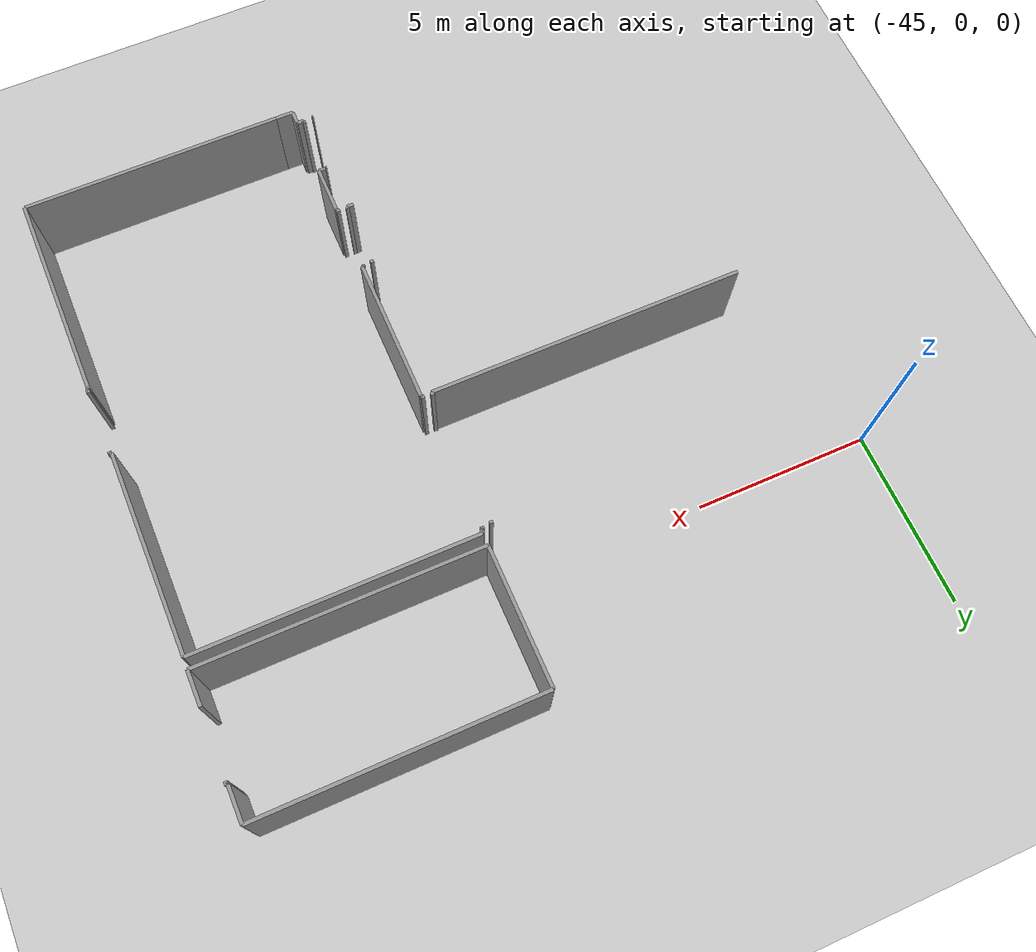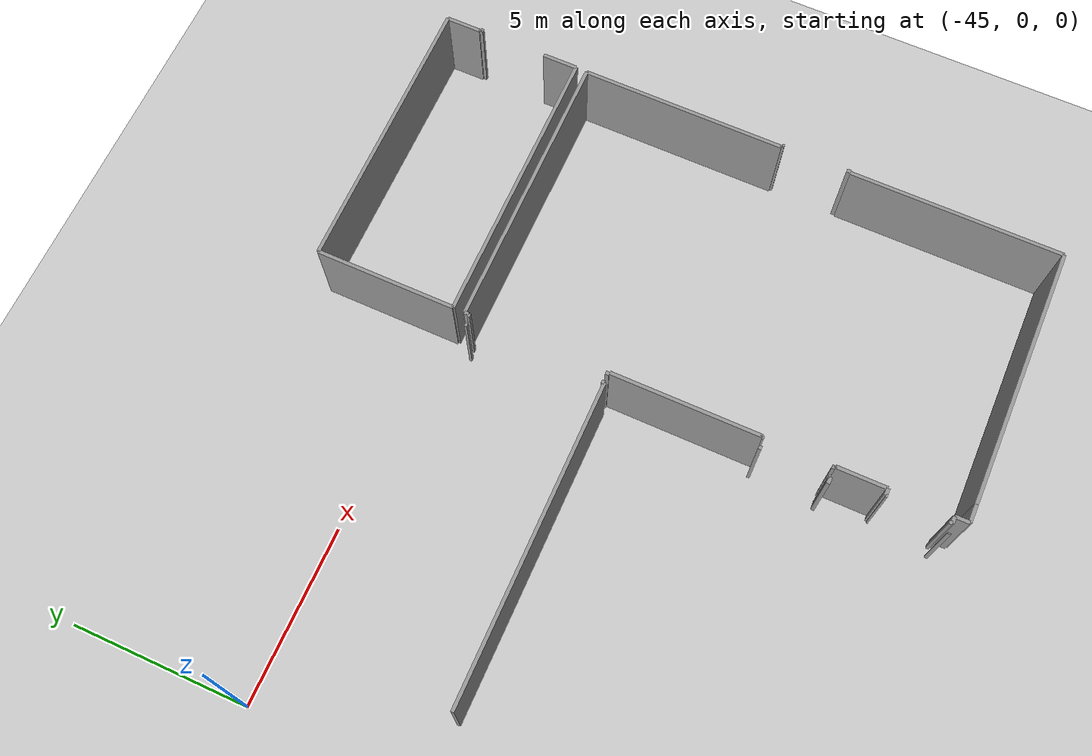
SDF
<sdf version="1.6">
 <world name="default">
  <model name="ground_plane">
   <static>1</static>
   <link name="link">
    <collision name="collision">
     <geometry><plane><normal>0 0 1</normal><size>100 100</size></plane></geometry>
     <surface><friction><ode><mu>100</mu><mu2>50</mu2></ode></friction></surface>
    </collision>
    <visual name="visual">
     <cast_shadows>0</cast_shadows>
     <geometry><plane><normal>0 0 1</normal><size>100 100</size></plane></geometry>
     <material>
      <script><uri>file://media/materials/scripts/gazebo.material</uri><name>Gazebo/Grey</name></script>
     </material>
    </visual>
   </link>
  </model>
  <model name="0510030939_A_40_1_103">
   <static>1</static>
   <link name="Wall_48">
    <collision name="Wall_48_Collision">
     <geometry><box><size>0.0758649172412 0.1 2.5</size></box></geometry>
     <pose>0.0379324586206 0 1.25 0 0 0</pose>
    </collision>
    <visual name="Wall_48_Visual">
     <pose>0.0379324586206 0 1.25 0 0 0</pose>
     <geometry><box><size>0.0758649172412 0.1 2.5</size></box></geometry>
     <material>
      <script><uri>file://media/materials/scripts/gazebo.material</uri><name>Gazebo/Grey</name></script>
      <ambient>1 1 1 1</ambient>
     </material>
    </visual>
    <pose>23.3506750961 -18.7676080948 0 0 0 -1.57079632679</pose>
   </link>
   <link name="Wall_49">
    <collision name="Wall_49_Collision">
     <geometry><box><size>0.0873018394383 0.1 2.5</size></box></geometry>
     <pose>0.0436509197192 0 1.25 0 0 0</pose>
    </collision>
    <visual name="Wall_49_Visual">
     <pose>0.0436509197192 0 1.25 0 0 0</pose>
     <geometry><box><size>0.0873018394383 0.1 2.5</size></box></geometry>
     <material>
      <script><uri>file://media/materials/scripts/gazebo.material</uri><name>Gazebo/Grey</name></script>
      <ambient>1 1 1 1</ambient>
     </material>
    </visual>
    <pose>23.3506750961 -22.5969438002 0 0 0 -1.57079632679</pose>
   </link>
   <link name="Wall_50">
    <collision name="Wall_50_Collision">
     <geometry><box><size>8.95765161864 0.1 2.5</size></box></geometry>
     <pose>4.47882580932 0 1.25 0 0 0</pose>
    </collision>
    <visual name="Wall_50_Visual">
     <pose>4.47882580932 0 1.25 0 0 0</pose>
     <geometry><box><size>8.95765161864 0.1 2.5</size></box></geometry>
     <material>
      <script><uri>file://media/materials/scripts/gazebo.material</uri><name>Gazebo/Grey</name></script>
      <ambient>1 1 1 1</ambient>
     </material>
    </visual>
    <pose>23.3506750961 -22.6842456397 0 0 0 3.14159265359</pose>
   </link>
   <link name="Wall_71">
    <collision name="Wall_71_Collision">
     <geometry><box><size>0.505511961114 0.1 2.5</size></box></geometry>
     <pose>0.252755980557 0 1.25 0 0 0</pose>
    </collision>
    <visual name="Wall_71_Visual">
     <pose>0.252755980557 0 1.25 0 0 0</pose>
     <geometry><box><size>0.505511961114 0.1 2.5</size></box></geometry>
     <material>
      <script><uri>file://media/materials/scripts/gazebo.material</uri><name>Gazebo/Grey</name></script>
      <ambient>1 1 1 1</ambient>
     </material>
    </visual>
    <pose>24.1516408806 -32.2968516695 0 0 0 3.14159265359</pose>
   </link>
   <link name="Wall_72">
    <collision name="Wall_72_Collision">
     <geometry><box><size>0.389999046923 0.1 2.5</size></box></geometry>
     <pose>0.194999523462 0 1.25 0 0 0</pose>
    </collision>
    <visual name="Wall_72_Visual">
     <pose>0.194999523462 0 1.25 0 0 0</pose>
     <geometry><box><size>0.389999046923 0.1 2.5</size></box></geometry>
     <material>
      <script><uri>file://media/materials/scripts/gazebo.material</uri><name>Gazebo/Grey</name></script>
      <ambient>1 1 1 1</ambient>
     </material>
    </visual>
    <pose>23.6461289195 -32.2968516695 0 0 0 1.57079632679</pose>
   </link>
   <link name="Wall_73">
    <collision name="Wall_73_Collision">
     <geometry><box><size>0.186803062554 0.1 2.5</size></box></geometry>
     <pose>0.0934015312768 0 1.25 0 0 0</pose>
    </collision>
    <visual name="Wall_73_Visual">
     <pose>0.0934015312768 0 1.25 0 0 0</pose>
     <geometry><box><size>0.186803062554 0.1 2.5</size></box></geometry>
     <material>
      <script><uri>file://media/materials/scripts/gazebo.material</uri><name>Gazebo/Grey</name></script>
      <ambient>1 1 1 1</ambient>
     </material>
    </visual>
    <pose>23.6461289195 -31.9068526225 0 0 0 3.14159265359</pose>
   </link>
   <link name="Wall_74">
    <collision name="Wall_74_Collision">
     <geometry><box><size>0.0824729167329 0.1 2.5</size></box></geometry>
     <pose>0.0412364583664 0 1.25 0 0 0</pose>
    </collision>
    <visual name="Wall_74_Visual">
     <pose>0.0412364583664 0 1.25 0 0 0</pose>
     <geometry><box><size>0.0824729167329 0.1 2.5</size></box></geometry>
     <material>
      <script><uri>file://media/materials/scripts/gazebo.material</uri><name>Gazebo/Grey</name></script>
      <ambient>1 1 1 1</ambient>
     </material>
    </visual>
    <pose>23.459325857 -31.9068526225 0 0 0 1.57079632679</pose>
   </link>
   <link name="Wall_75">
    <collision name="Wall_75_Collision">
     <geometry><box><size>0.0526098421069 0.1 2.5</size></box></geometry>
     <pose>0.0263049210535 0 1.25 0 0 0</pose>
    </collision>
    <visual name="Wall_75_Visual">
     <pose>0.0263049210535 0 1.25 0 0 0</pose>
     <geometry><box><size>0.0526098421069 0.1 2.5</size></box></geometry>
     <material>
      <script><uri>file://media/materials/scripts/gazebo.material</uri><name>Gazebo/Grey</name></script>
      <ambient>1 1 1 1</ambient>
     </material>
    </visual>
    <pose>23.459325857 -30.2342662897 0 0 0 1.57079632679</pose>
   </link>
   <link name="Wall_76">
    <collision name="Wall_76_Collision">
     <geometry><box><size>0.193029831305 0.1 2.5</size></box></geometry>
     <pose>0.0965149156527 0 1.25 0 0 0</pose>
    </collision>
    <visual name="Wall_76_Visual">
     <pose>0.0965149156527 0 1.25 0 0 0</pose>
     <geometry><box><size>0.193029831305 0.1 2.5</size></box></geometry>
     <material>
      <script><uri>file://media/materials/scripts/gazebo.material</uri><name>Gazebo/Grey</name></script>
      <ambient>1 1 1 1</ambient>
     </material>
    </visual>
    <pose>23.459325857 -30.1816564476 0 0 0 0.0</pose>
   </link>
   <link name="Wall_77">
    <collision name="Wall_77_Collision">
     <geometry><box><size>1.37903866315 0.1 2.5</size></box></geometry>
     <pose>0.689519331575 0 1.25 0 0 0</pose>
    </collision>
    <visual name="Wall_77_Visual">
     <pose>0.689519331575 0 1.25 0 0 0</pose>
     <geometry><box><size>1.37903866315 0.1 2.5</size></box></geometry>
     <material>
      <script><uri>file://media/materials/scripts/gazebo.material</uri><name>Gazebo/Grey</name></script>
      <ambient>1 1 1 1</ambient>
     </material>
    </visual>
    <pose>23.6523556883 -30.1816564476 0 0 0 1.57079632679</pose>
   </link>
   <link name="Wall_78">
    <collision name="Wall_78_Collision">
     <geometry><box><size>0.0343107665915 0.1 2.5</size></box></geometry>
     <pose>0.0171553832957 0 1.25 0 0 0</pose>
    </collision>
    <visual name="Wall_78_Visual">
     <pose>0.0171553832957 0 1.25 0 0 0</pose>
     <geometry><box><size>0.0343107665915 0.1 2.5</size></box></geometry>
     <material>
      <script><uri>file://media/materials/scripts/gazebo.material</uri><name>Gazebo/Grey</name></script>
      <ambient>1 1 1 1</ambient>
     </material>
    </visual>
    <pose>23.6523556883 -28.8026177844 0 0 0 3.14159265359</pose>
   </link>
   <link name="Wall_79">
    <collision name="Wall_79_Collision">
     <geometry><box><size>0.0829812243861 0.1 2.5</size></box></geometry>
     <pose>0.041490612193 0 1.25 0 0 0</pose>
    </collision>
    <visual name="Wall_79_Visual">
     <pose>0.041490612193 0 1.25 0 0 0</pose>
     <geometry><box><size>0.0829812243861 0.1 2.5</size></box></geometry>
     <material>
      <script><uri>file://media/materials/scripts/gazebo.material</uri><name>Gazebo/Grey</name></script>
      <ambient>1 1 1 1</ambient>
     </material>
    </visual>
    <pose>23.6180449217 -28.8026177844 0 0 0 1.57079632679</pose>
   </link>
   <link name="Wall_80">
    <collision name="Wall_80_Collision">
     <geometry><box><size>0.0477809194015 0.1 2.5</size></box></geometry>
     <pose>0.0238904597007 0 1.25 0 0 0</pose>
    </collision>
    <visual name="Wall_80_Visual">
     <pose>0.0238904597007 0 1.25 0 0 0</pose>
     <geometry><box><size>0.0477809194015 0.1 2.5</size></box></geometry>
     <material>
      <script><uri>file://media/materials/scripts/gazebo.material</uri><name>Gazebo/Grey</name></script>
      <ambient>1 1 1 1</ambient>
     </material>
    </visual>
    <pose>23.6180449217 -26.9092988531 0 0 0 1.57079632679</pose>
   </link>
   <link name="Wall_81">
    <collision name="Wall_81_Collision">
     <geometry><box><size>0.0343107665915 0.1 2.5</size></box></geometry>
     <pose>0.0171553832957 0 1.25 0 0 0</pose>
    </collision>
    <visual name="Wall_81_Visual">
     <pose>0.0171553832957 0 1.25 0 0 0</pose>
     <geometry><box><size>0.0343107665915 0.1 2.5</size></box></geometry>
     <material>
      <script><uri>file://media/materials/scripts/gazebo.material</uri><name>Gazebo/Grey</name></script>
      <ambient>1 1 1 1</ambient>
     </material>
    </visual>
    <pose>23.6180449217 -26.8615179337 0 0 0 0.0</pose>
   </link>
   <link name="Wall_82">
    <collision name="Wall_82_Collision">
     <geometry><box><size>4.15655875719 0.1 2.5</size></box></geometry>
     <pose>2.07827937859 0 1.25 0 0 0</pose>
    </collision>
    <visual name="Wall_82_Visual">
     <pose>2.07827937859 0 1.25 0 0 0</pose>
     <geometry><box><size>4.15655875719 0.1 2.5</size></box></geometry>
     <material>
      <script><uri>file://media/materials/scripts/gazebo.material</uri><name>Gazebo/Grey</name></script>
      <ambient>1 1 1 1</ambient>
     </material>
    </visual>
    <pose>23.6523556883 -26.8615179337 0 0 0 1.57079632679</pose>
   </link>
   <link name="Wall_83">
    <collision name="Wall_83_Collision">
     <geometry><box><size>0.0352003049846 0.1 2.5</size></box></geometry>
     <pose>0.0176001524923 0 1.25 0 0 0</pose>
    </collision>
    <visual name="Wall_83_Visual">
     <pose>0.0176001524923 0 1.25 0 0 0</pose>
     <geometry><box><size>0.0352003049846 0.1 2.5</size></box></geometry>
     <material>
      <script><uri>file://media/materials/scripts/gazebo.material</uri><name>Gazebo/Grey</name></script>
      <ambient>1 1 1 1</ambient>
     </material>
    </visual>
    <pose>23.6523556883 -22.7049591765 0 0 0 3.14159265359</pose>
   </link>
   <link name="Wall_84">
    <collision name="Wall_84_Collision">
     <geometry><box><size>0.103821838168 0.1 2.5</size></box></geometry>
     <pose>0.0519109190838 0 1.25 0 0 0</pose>
    </collision>
    <visual name="Wall_84_Visual">
     <pose>0.0519109190838 0 1.25 0 0 0</pose>
     <geometry><box><size>0.103821838168 0.1 2.5</size></box></geometry>
     <material>
      <script><uri>file://media/materials/scripts/gazebo.material</uri><name>Gazebo/Grey</name></script>
      <ambient>1 1 1 1</ambient>
     </material>
    </visual>
    <pose>23.6171553833 -22.7049591765 0 0 0 1.57079632679</pose>
   </link>
   <link name="Wall_85">
    <collision name="Wall_85_Collision">
     <geometry><box><size>0.0613781491248 0.1 2.5</size></box></geometry>
     <pose>0.0306890745624 0 1.25 0 0 0</pose>
    </collision>
    <visual name="Wall_85_Visual">
     <pose>0.0306890745624 0 1.25 0 0 0</pose>
     <geometry><box><size>0.0613781491248 0.1 2.5</size></box></geometry>
     <material>
      <script><uri>file://media/materials/scripts/gazebo.material</uri><name>Gazebo/Grey</name></script>
      <ambient>1 1 1 1</ambient>
     </material>
    </visual>
    <pose>23.6171553833 -18.789338247 0 0 0 1.57079632679</pose>
   </link>
   <link name="Wall_86">
    <collision name="Wall_86_Collision">
     <geometry><box><size>0.0332941512851 0.1 2.5</size></box></geometry>
     <pose>0.0166470756425 0 1.25 0 0 0</pose>
    </collision>
    <visual name="Wall_86_Visual">
     <pose>0.0166470756425 0 1.25 0 0 0</pose>
     <geometry><box><size>0.0332941512851 0.1 2.5</size></box></geometry>
     <material>
      <script><uri>file://media/materials/scripts/gazebo.material</uri><name>Gazebo/Grey</name></script>
      <ambient>1 1 1 1</ambient>
     </material>
    </visual>
    <pose>23.6171553833 -18.7279600978 0 0 0 0.0</pose>
   </link>
   <link name="Wall_87">
    <collision name="Wall_87_Collision">
     <geometry><box><size>0.112081837532 0.1 2.5</size></box></geometry>
     <pose>0.0560409187661 0 1.25 0 0 0</pose>
    </collision>
    <visual name="Wall_87_Visual">
     <pose>0.0560409187661 0 1.25 0 0 0</pose>
     <geometry><box><size>0.112081837532 0.1 2.5</size></box></geometry>
     <material>
      <script><uri>file://media/materials/scripts/gazebo.material</uri><name>Gazebo/Grey</name></script>
      <ambient>1 1 1 1</ambient>
     </material>
    </visual>
    <pose>23.6504495346 -18.7279600978 0 0 0 1.57079632679</pose>
   </link>
   <link name="Wall_88">
    <collision name="Wall_88_Collision">
     <geometry><box><size>7.86656924103 0.1 2.5</size></box></geometry>
     <pose>3.93328462052 0 1.25 0 0 0</pose>
    </collision>
    <visual name="Wall_88_Visual">
     <pose>3.93328462052 0 1.25 0 0 0</pose>
     <geometry><box><size>7.86656924103 0.1 2.5</size></box></geometry>
     <material>
      <script><uri>file://media/materials/scripts/gazebo.material</uri><name>Gazebo/Grey</name></script>
      <ambient>1 1 1 1</ambient>
     </material>
    </visual>
    <pose>23.6504495346 -18.6158782603 0 0 0 0.0</pose>
   </link>
   <link name="Wall_89">
    <collision name="Wall_89_Collision">
     <geometry><box><size>5.74578263494 0.1 2.5</size></box></geometry>
     <pose>2.87289131747 0 1.25 0 0 0</pose>
    </collision>
    <visual name="Wall_89_Visual">
     <pose>2.87289131747 0 1.25 0 0 0</pose>
     <geometry><box><size>5.74578263494 0.1 2.5</size></box></geometry>
     <material>
      <script><uri>file://media/materials/scripts/gazebo.material</uri><name>Gazebo/Grey</name></script>
      <ambient>1 1 1 1</ambient>
     </material>
    </visual>
    <pose>31.5170187756 -18.6158782603 0 0 0 -1.57079632679</pose>
   </link>
   <link name="Wall_90">
    <collision name="Wall_90_Collision">
     <geometry><box><size>0.0438415350891 0.1 2.5</size></box></geometry>
     <pose>0.0219207675446 0 1.25 0 0 0</pose>
    </collision>
    <visual name="Wall_90_Visual">
     <pose>0.0219207675446 0 1.25 0 0 0</pose>
     <geometry><box><size>0.0438415350891 0.1 2.5</size></box></geometry>
     <material>
      <script><uri>file://media/materials/scripts/gazebo.material</uri><name>Gazebo/Grey</name></script>
      <ambient>1 1 1 1</ambient>
     </material>
    </visual>
    <pose>31.5170187756 -24.3616608953 0 0 0 0.0</pose>
   </link>
   <link name="Wall_91">
    <collision name="Wall_91_Collision">
     <geometry><box><size>0.0629030720844 0.1 2.5</size></box></geometry>
     <pose>0.0314515360422 0 1.25 0 0 0</pose>
    </collision>
    <visual name="Wall_91_Visual">
     <pose>0.0314515360422 0 1.25 0 0 0</pose>
     <geometry><box><size>0.0629030720844 0.1 2.5</size></box></geometry>
     <material>
      <script><uri>file://media/materials/scripts/gazebo.material</uri><name>Gazebo/Grey</name></script>
      <ambient>1 1 1 1</ambient>
     </material>
    </visual>
    <pose>31.5608603107 -24.3616608953 0 0 0 -1.57079632679</pose>
   </link>
   <link name="Wall_92">
    <collision name="Wall_92_Collision">
     <geometry><box><size>0.114623375798 0.1 2.5</size></box></geometry>
     <pose>0.0573116878991 0 1.25 0 0 0</pose>
    </collision>
    <visual name="Wall_92_Visual">
     <pose>0.0573116878991 0 1.25 0 0 0</pose>
     <geometry><box><size>0.114623375798 0.1 2.5</size></box></geometry>
     <material>
      <script><uri>file://media/materials/scripts/gazebo.material</uri><name>Gazebo/Grey</name></script>
      <ambient>1 1 1 1</ambient>
     </material>
    </visual>
    <pose>31.5608603107 -26.2166025987 0 0 0 -1.57079632679</pose>
   </link>
   <link name="Wall_93">
    <collision name="Wall_93_Collision">
     <geometry><box><size>0.030752613019 0.1 2.5</size></box></geometry>
     <pose>0.0153763065095 0 1.25 0 0 0</pose>
    </collision>
    <visual name="Wall_93_Visual">
     <pose>0.0153763065095 0 1.25 0 0 0</pose>
     <geometry><box><size>0.030752613019 0.1 2.5</size></box></geometry>
     <material>
      <script><uri>file://media/materials/scripts/gazebo.material</uri><name>Gazebo/Grey</name></script>
      <ambient>1 1 1 1</ambient>
     </material>
    </visual>
    <pose>31.5608603107 -26.3312259745 0 0 0 3.14159265359</pose>
   </link>
   <link name="Wall_94">
    <collision name="Wall_94_Collision">
     <geometry><box><size>5.95469708041 0.1 2.5</size></box></geometry>
     <pose>2.9773485402 0 1.25 0 0 0</pose>
    </collision>
    <visual name="Wall_94_Visual">
     <pose>2.9773485402 0 1.25 0 0 0</pose>
     <geometry><box><size>5.95469708041 0.1 2.5</size></box></geometry>
     <material>
      <script><uri>file://media/materials/scripts/gazebo.material</uri><name>Gazebo/Grey</name></script>
      <ambient>1 1 1 1</ambient>
     </material>
    </visual>
    <pose>31.5301076977 -26.3312259745 0 0 0 -1.57079632679</pose>
   </link>
   <link name="Wall_95">
    <collision name="Wall_95_Collision">
     <geometry><box><size>7.37847491049 0.1 2.5</size></box></geometry>
     <pose>3.68923745525 0 1.25 0 0 0</pose>
    </collision>
    <visual name="Wall_95_Visual">
     <pose>3.68923745525 0 1.25 0 0 0</pose>
     <geometry><box><size>7.37847491049 0.1 2.5</size></box></geometry>
     <material>
      <script><uri>file://media/materials/scripts/gazebo.material</uri><name>Gazebo/Grey</name></script>
      <ambient>1 1 1 1</ambient>
     </material>
    </visual>
    <pose>31.5301076977 -32.2859230549 0 0 0 -3.14011150489</pose>
   </link>
   <link name="Wall_98">
    <collision name="Wall_98_Collision">
     <geometry><box><size>0.0874289163516 0.1 2.5</size></box></geometry>
     <pose>0.0437144581758 0 1.25 0 0 0</pose>
    </collision>
    <visual name="Wall_98_Visual">
     <pose>0.0437144581758 0 1.25 0 0 0</pose>
     <geometry><box><size>0.0874289163516 0.1 2.5</size></box></geometry>
     <material>
      <script><uri>file://media/materials/scripts/gazebo.material</uri><name>Gazebo/Grey</name></script>
      <ambient>1 1 1 1</ambient>
     </material>
    </visual>
    <pose>23.3499126346 -26.8688883947 0 0 0 -1.57079632679</pose>
   </link>
   <link name="Wall_99">
    <collision name="Wall_99_Collision">
     <geometry><box><size>0.0582012262922 0.1 2.5</size></box></geometry>
     <pose>0.0291006131461 0 1.25 0 0 0</pose>
    </collision>
    <visual name="Wall_99_Visual">
     <pose>0.0291006131461 0 1.25 0 0 0</pose>
     <geometry><box><size>0.0582012262922 0.1 2.5</size></box></geometry>
     <material>
      <script><uri>file://media/materials/scripts/gazebo.material</uri><name>Gazebo/Grey</name></script>
      <ambient>1 1 1 1</ambient>
     </material>
    </visual>
    <pose>23.3499126346 -28.7219239445 0 0 0 -1.57079632679</pose>
   </link>
   <link name="Wall_100">
    <collision name="Wall_100_Collision">
     <geometry><box><size>0.186930139467 0.1 2.5</size></box></geometry>
     <pose>0.0934650697335 0 1.25 0 0 0</pose>
    </collision>
    <visual name="Wall_100_Visual">
     <pose>0.0934650697335 0 1.25 0 0 0</pose>
     <geometry><box><size>0.186930139467 0.1 2.5</size></box></geometry>
     <material>
      <script><uri>file://media/materials/scripts/gazebo.material</uri><name>Gazebo/Grey</name></script>
      <ambient>1 1 1 1</ambient>
     </material>
    </visual>
    <pose>23.3499126346 -28.7801251708 0 0 0 3.14159265359</pose>
   </link>
   <link name="Wall_105">
    <collision name="Wall_105_Collision">
     <geometry><box><size>0.0345649204181 0.1 2.5</size></box></geometry>
     <pose>0.017282460209 0 1.25 0 0 0</pose>
    </collision>
    <visual name="Wall_105_Visual">
     <pose>0.017282460209 0 1.25 0 0 0</pose>
     <geometry><box><size>0.0345649204181 0.1 2.5</size></box></geometry>
     <material>
      <script><uri>file://media/materials/scripts/gazebo.material</uri><name>Gazebo/Grey</name></script>
      <ambient>1 1 1 1</ambient>
     </material>
    </visual>
    <pose>23.1960224926 -31.9193061601 0 0 0 3.14159265359</pose>
   </link>
   <link name="Wall_108">
    <collision name="Wall_108_Collision">
     <geometry><box><size>3.91803539092 0.1 2.5</size></box></geometry>
     <pose>1.95901769546 0 1.25 0 0 0</pose>
    </collision>
    <visual name="Wall_108_Visual">
     <pose>1.95901769546 0 1.25 0 0 0</pose>
     <geometry><box><size>3.91803539092 0.1 2.5</size></box></geometry>
     <material>
      <script><uri>file://media/materials/scripts/gazebo.material</uri><name>Gazebo/Grey</name></script>
      <ambient>1 1 1 1</ambient>
     </material>
    </visual>
    <pose>23.6590907647 -18.2828096706 0 0 0 1.57079632679</pose>
   </link>
   <link name="Wall_109">
    <collision name="Wall_109_Collision">
     <geometry><box><size>7.871016933 0.1 2.5</size></box></geometry>
     <pose>3.9355084665 0 1.25 0 0 0</pose>
    </collision>
    <visual name="Wall_109_Visual">
     <pose>3.9355084665 0 1.25 0 0 0</pose>
     <geometry><box><size>7.871016933 0.1 2.5</size></box></geometry>
     <material>
      <script><uri>file://media/materials/scripts/gazebo.material</uri><name>Gazebo/Grey</name></script>
      <ambient>1 1 1 1</ambient>
     </material>
    </visual>
    <pose>23.6590907647 -14.3647742796 0 0 0 0.0</pose>
   </link>
   <link name="Wall_110">
    <collision name="Wall_110_Collision">
     <geometry><box><size>0.988277154748 0.1 2.5</size></box></geometry>
     <pose>0.494138577374 0 1.25 0 0 0</pose>
    </collision>
    <visual name="Wall_110_Visual">
     <pose>0.494138577374 0 1.25 0 0 0</pose>
     <geometry><box><size>0.988277154748 0.1 2.5</size></box></geometry>
     <material>
      <script><uri>file://media/materials/scripts/gazebo.material</uri><name>Gazebo/Grey</name></script>
      <ambient>1 1 1 1</ambient>
     </material>
    </visual>
    <pose>31.5301076977 -14.3647742796 0 0 0 -1.57079632679</pose>
   </link>
   <link name="Wall_111">
    <collision name="Wall_111_Collision">
     <geometry><box><size>0.0334212281984 0.1 2.5</size></box></geometry>
     <pose>0.0167106140992 0 1.25 0 0 0</pose>
    </collision>
    <visual name="Wall_111_Visual">
     <pose>0.0167106140992 0 1.25 0 0 0</pose>
     <geometry><box><size>0.0334212281984 0.1 2.5</size></box></geometry>
     <material>
      <script><uri>file://media/materials/scripts/gazebo.material</uri><name>Gazebo/Grey</name></script>
      <ambient>1 1 1 1</ambient>
     </material>
    </visual>
    <pose>31.5301076977 -15.3530514344 0 0 0 0.0</pose>
   </link>
   <link name="Wall_112">
    <collision name="Wall_112_Collision">
     <geometry><box><size>0.0954347618896 0.1 2.5</size></box></geometry>
     <pose>0.0477173809448 0 1.25 0 0 0</pose>
    </collision>
    <visual name="Wall_112_Visual">
     <pose>0.0477173809448 0 1.25 0 0 0</pose>
     <geometry><box><size>0.0954347618896 0.1 2.5</size></box></geometry>
     <material>
      <script><uri>file://media/materials/scripts/gazebo.material</uri><name>Gazebo/Grey</name></script>
      <ambient>1 1 1 1</ambient>
     </material>
    </visual>
    <pose>31.5635289259 -15.3530514344 0 0 0 -1.57079632679</pose>
   </link>
   <link name="Wall_115">
    <collision name="Wall_115_Collision">
     <geometry><box><size>0.978111001684 0.1 2.5</size></box></geometry>
     <pose>0.489055500842 0 1.25 0 0 0</pose>
    </collision>
    <visual name="Wall_115_Visual">
     <pose>0.489055500842 0 1.25 0 0 0</pose>
     <geometry><box><size>0.978111001684 0.1 2.5</size></box></geometry>
     <material>
      <script><uri>file://media/materials/scripts/gazebo.material</uri><name>Gazebo/Grey</name></script>
      <ambient>1 1 1 1</ambient>
     </material>
    </visual>
    <pose>31.5329033898 -17.31041713 0 0 0 -1.57079632679</pose>
   </link>
   <link name="Wall_116">
    <collision name="Wall_116_Collision">
     <geometry><box><size>7.87381470165 0.1 2.5</size></box></geometry>
     <pose>3.93690735082 0 1.25 0 0 0</pose>
    </collision>
    <visual name="Wall_116_Visual">
     <pose>3.93690735082 0 1.25 0 0 0</pose>
     <geometry><box><size>7.87381470165 0.1 2.5</size></box></geometry>
     <material>
      <script><uri>file://media/materials/scripts/gazebo.material</uri><name>Gazebo/Grey</name></script>
      <ambient>1 1 1 1</ambient>
     </material>
    </visual>
    <pose>31.5329033898 -18.2885281317 0 0 0 3.14086639042</pose>
   </link>
   <pose>-57.65 17.6622597452 0 0 0 0</pose>
  </model>
 </world>
</sdf>
